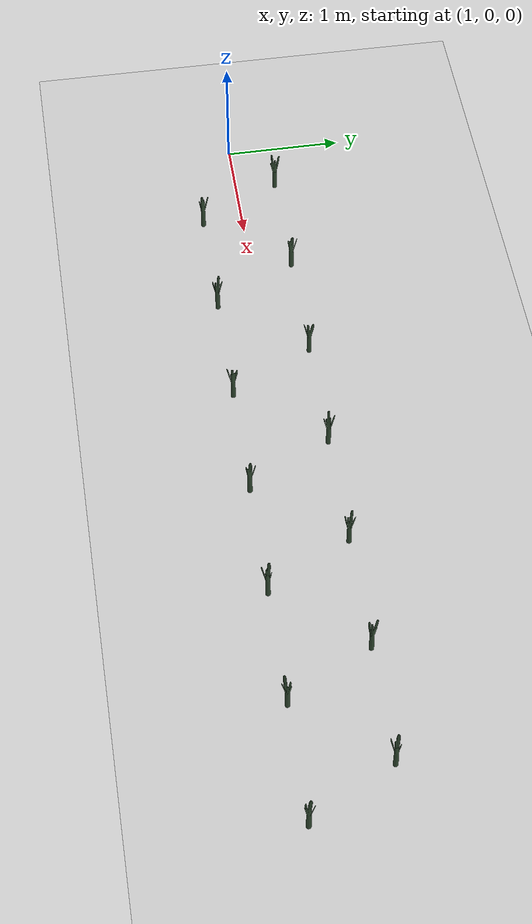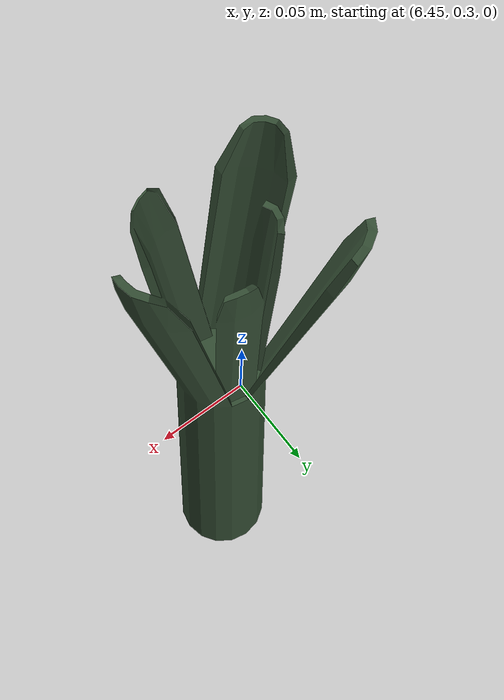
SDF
<sdf version="1.6">
 <world name="default">
  <light name="sun" type="directional">
   <pose>0 0 10 0 -0 0</pose>
   <diffuse>0.5 0.5 0.5 1</diffuse>
   <specular>0.1 0.1 0.1 1</specular>
   <attenuation>
    <range>1000</range>
    <constant>0.9</constant>
    <linear>0.01</linear>
    <quadratic>0.001</quadratic>
   </attenuation>
   <direction>0.9 0.5 -1</direction>
  </light>
  <scene><background>130 200 255 1</background><ambient>130 140 140 1</ambient></scene>
  <include><uri>model://dirt_plane</uri></include>
  <include><uri>model://Leek</uri><pose>1.500000 0.350000 0.15 0 0 -35.771965</pose><static>0</static></include>
  <include>
   <uri>model://Leek</uri>
   <pose>2.500000 0.350000 0.15 0 0 -176.457187</pose>
   <static>0</static>
  </include>
  <include><uri>model://Leek</uri><pose>3.500000 0.350000 0.15 0 0 118.070050</pose><static>0</static></include>
  <include><uri>model://Leek</uri><pose>4.500000 0.350000 0.15 0 0 1.347159</pose><static>0</static></include>
  <include><uri>model://Leek</uri><pose>5.500000 0.350000 0.15 0 0 7.231309</pose><static>0</static></include>
  <include><uri>model://Leek</uri><pose>6.500000 0.350000 0.15 0 0 -56.156237</pose><static>0</static></include>
  <include>
   <uri>model://Leek</uri>
   <pose>7.500000 0.350000 0.15 0 0 -110.374410</pose>
   <static>0</static>
  </include>
  <include>
   <uri>model://Leek</uri>
   <pose>1.894325 -0.350000 0.15 0 0 -138.324125</pose>
   <static>0</static>
  </include>
  <include><uri>model://Leek</uri><pose>2.894325 -0.350000 0.15 0 0 1.084493</pose><static>0</static></include>
  <include><uri>model://Leek</uri><pose>3.894325 -0.350000 0.15 0 0 -1.540004</pose><static>0</static></include>
  <include>
   <uri>model://Leek</uri>
   <pose>4.894325 -0.350000 0.15 0 0 -113.547716</pose>
   <static>0</static>
  </include>
  <include><uri>model://Leek</uri><pose>5.894325 -0.350000 0.15 0 0 2.766385</pose><static>0</static></include>
  <include>
   <uri>model://Leek</uri>
   <pose>6.894325 -0.350000 0.15 0 0 110.368929</pose>
   <static>0</static>
  </include>
  <include>
   <uri>model://Leek</uri>
   <pose>7.894325 -0.350000 0.15 0 0 -57.250222</pose>
   <static>0</static>
  </include>
 </world>
</sdf>

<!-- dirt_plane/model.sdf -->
<sdf version="1.4">
<model name="dirt_plane">
  <static>true</static>
    <link name="link">
      <collision name="collision">
        <geometry>
          <plane>
            <normal>0 0 1</normal>
            <size>100 100</size>
          </plane>
        </geometry>
        <surface>
          <friction>
            <ode>
              <mu>100</mu>
              <mu2>50</mu2>
            </ode>
          </friction>
        </surface>
      </collision>
      <visual name="visual">
        <cast_shadows>false</cast_shadows>
        <geometry>
          <plane>
            <normal>0 0 1</normal>
            <size>100 100</size>
          </plane>
        </geometry>
        <material>
          <script>
            <uri>model://ground_plane/materials/scripts/my_ground_plane.material</uri>
            <uri>model://ground_plane/materials/textures</uri>
            <name>my_ground_plane/Dirt</name>
          </script>
        </material>
      </visual>
    </link>
  </model>
</sdf>

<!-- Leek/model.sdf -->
<sdf version='1.6'>
  <model name='Leek'>
    <link name='link'>
      <pose frame=''>0 0 0 0 -0 0</pose>
      <inertial>
        <mass>1</mass>
        <inertia>
          <ixx>0.145833</ixx>
          <ixy>0</ixy>
          <ixz>0</ixz>
          <iyy>0.145833</iyy>
          <iyz>0</iyz>
          <izz>0.125</izz>
        </inertia>
        <pose frame=''>0 0 0 0 -0 0</pose>
      </inertial>
      <self_collide>0</self_collide>
      <kinematic>0</kinematic>
      <gravity>1</gravity>
      <visual name='visual'>
        <geometry>
          <mesh>
            <uri>model://Leek/Poireau.dae</uri>
            <scale>1 1 1</scale>
          </mesh>
        </geometry>
        <material>
          <script>
            <name>Gazebo/Grey</name>
            <uri>file://media/materials/scripts/gazebo.material</uri>
          </script>
          <ambient>0.3 0.7 0.4 0</ambient>
          <diffuse>0.2 0.3 0.2 0</diffuse>
          <specular>0 0 0 1</specular>
          <emissive>0 0 0 1</emissive>
          <shader type='vertex'>
            <normal_map>__default__</normal_map>
          </shader>
        </material>
        <pose frame=''>0 0 -0.08 0 -0 0</pose>
        <cast_shadows>1</cast_shadows>
        <transparency>0</transparency>
      </visual>
      <collision name='collision'>
        <laser_retro>0</laser_retro>
        <max_contacts>10</max_contacts>
        <pose frame=''>0 0 0 0 -0 0</pose>
        <geometry>
          <cylinder>
            <radius>0.02</radius>
            <length>0.25</length>
          </cylinder>
        </geometry>
        <surface>
          <friction>
            <ode>
              <mu>1</mu>
              <mu2>1</mu2>
              <fdir1>0 0 0</fdir1>
              <slip1>0</slip1>
              <slip2>0</slip2>
            </ode>
            <torsional>
              <coefficient>1</coefficient>
              <patch_radius>0</patch_radius>
              <surface_radius>0</surface_radius>
              <use_patch_radius>1</use_patch_radius>
              <ode>
                <slip>0</slip>
              </ode>
            </torsional>
          </friction>
          <bounce>
            <restitution_coefficient>0</restitution_coefficient>
            <threshold>1e+06</threshold>
          </bounce>
          <contact>
            <collide_without_contact>0</collide_without_contact>
            <collide_without_contact_bitmask>1</collide_without_contact_bitmask>
            <collide_bitmask>1</collide_bitmask>
            <ode>
              <soft_cfm>0</soft_cfm>
              <soft_erp>0.2</soft_erp>
              <kp>1e+13</kp>
              <kd>1</kd>
              <max_vel>0.01</max_vel>
              <min_depth>0</min_depth>
            </ode>
            <bullet>
              <split_impulse>1</split_impulse>
              <split_impulse_penetration_threshold>-0.01</split_impulse_penetration_threshold>
              <soft_cfm>0</soft_cfm>
              <soft_erp>0.2</soft_erp>
              <kp>1e+13</kp>
              <kd>1</kd>
            </bullet>
          </contact>
        </surface>
      </collision>
    </link>
    <static>0</static>
    <allow_auto_disable>1</allow_auto_disable>
  </model>
</sdf>
